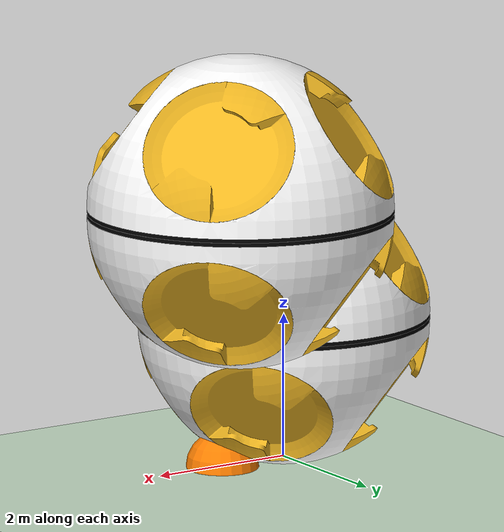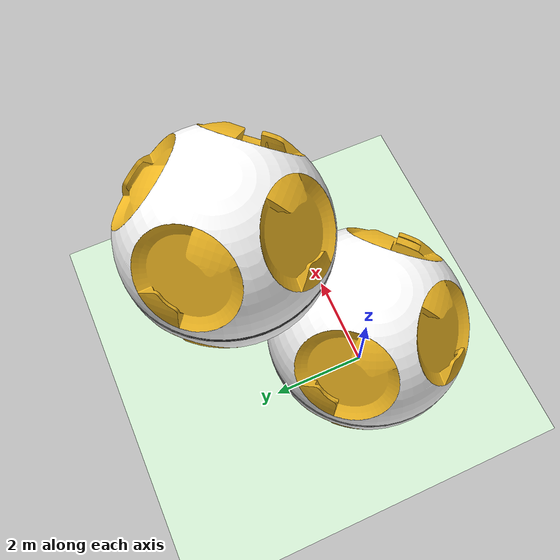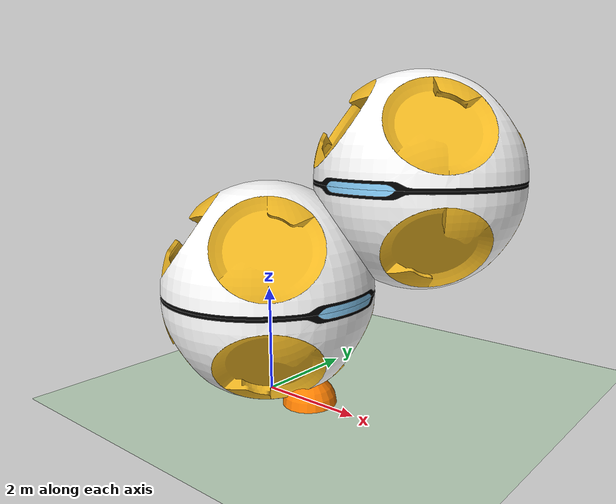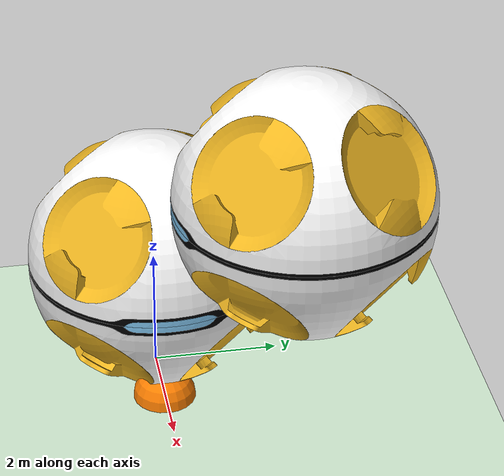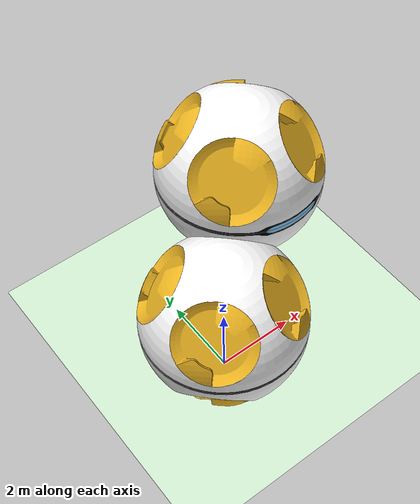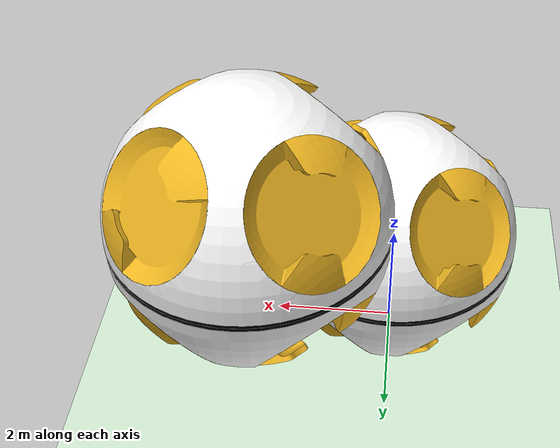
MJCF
<mujoco model="cellrobot(v1.0)">
  <compiler coordinate="local" angle="radian" meshdir="meshes" texturedir="textures" strippath="false" />
   <option gravity="0 0 -9.81" timestep="0.01"/>

  <size njmax="795" nconmax="250" nstack="631875" />

 <default>
        <geom margin="0.001" contype='1' conaffinity='1'  condim='4'/>
        <mesh scale="50 50 50"/>
        <joint limited="true" damping="0.2" armature=".01"/>

         <default class="detacher">
                <geom type="mesh" pos="0 0 0" rgba="0.93 0.71 0.13 1"  /> <!-- rgba="0.8 0.6 .4 1" -->
        </default>
        <default class="cell">
            <geom type="mesh" /> <!-- rgba="0.8 0.6 .4 1" -->

        </default>

   </default>
  <asset>
      <!--Meshes-->
      <mesh name="cell_half_gear" file="cell_gear/shell_gear.STL"  />
      <mesh name="detacher1" file="cell_gear/detacher1.STL"  />
      <mesh name="detacher2" file="cell_gear/detacher2.STL"  />
      <mesh name="detacher3" file="cell_gear/detacher3.STL"  />
      <mesh name="detacher4" file="cell_gear/detacher4.STL"  />
      <mesh name="circle_gear" file="cell_gear/circle_gear.STL"  />
      <mesh name="led_gear" file="cell_gear/led_gear.STL"  />

      <mesh name="cell_half_motor" file="cell_motor/shell_motor.STL"  />
      <mesh name="detacher5" file="cell_motor/detacher5.STL"  />
      <mesh name="detacher6" file="cell_motor/detacher6.STL"  />
      <mesh name="detacher7" file="cell_motor/detacher7.STL"  />
      <mesh name="detacher8" file="cell_motor/detacher8.STL"  />
      <mesh name="circle_motor" file="cell_motor/circle_motor.STL"  />
      <mesh name="led_motor" file="cell_motor/led_motor.STL"  />
      <!--Textures-->
      <texture name="floor_tex" builtin="checker"  type="2d"   rgb1=".2 .3 .4" rgb2=".1 .2 .3" width="100" height="100" />
      <texture name="texplane"  builtin="checker" height="100" rgb1="0 0 0" rgb2="0.8 0.8 0.8" type="2d" width="100"/>

      <texture name="texture:object" file="block.png" type="cube" gridsize="3 4" gridlayout=".U..LFRB.D.."/>  <!-- gridlayout=".U..LFRB.D.." -->

      <!--Materials-->
      <material name='floor_mat'    texture="floor_tex"  shininess="0.8" texrepeat="10 10" specular="0.7"  reflectance="0.5" />
      <material name="MatPlane" reflectance="0.5" shininess="1" specular="1" texrepeat="70 70" texture="texplane"/>

      <material name="material:object" texture="texture:object" specular="1" shininess="0" reflectance="0"/>
  </asset>

   <visual>
        <map fogstart="1.5" fogend="3"/>
        <quality shadowsize="2048"/>
   </visual>

    <!--Contacts-->
    <contact>

    </contact>

  <worldbody>
    <!--Lighting parameters-->
    <light cutoff="100" diffuse="1 1 1" dir="-0 0 -1.3" directional="true" exponent="1" pos="0 0 1.3" specular=".1 .1 .1"/>
    <!--Camera parameters-->
   <camera name="main1" mode="fixed" target="torso" pos="2 2 2" axisangle="2 2 -2 1"/>
    <!--Floor Property-->
    <geom conaffinity="1" condim="3" material="MatPlane" name="floor" pos="0 0 0" rgba="0.8 0.9 0.8 1" size="35 35 35" type="plane"/>

   <body name="torso" pos="0 0 0">

          <geom name="torso_geom" pos="0 0 0" density="0.000001" size="0.02" type="sphere"/>
          <joint name="root" armature="0" damping="0" limited="false" margin="0.01"  pos="0 0 0" type="free"/>
     <body name="cell0-1" pos="0  0  2.050 " euler =" 0   0  0">   <!-- 2.0150 2.0150 1.9147  1.9817 1.9817 1.9814 z*scale  2.6138 1.8479 2.2641 quat="0 -0.4082, -0.4082, 0.81654 "  euler =" 0 3.1416 0"-->
        <inertial pos="0 0 0"   mass="4"  diaginertia="0.0072 0.00443333 0.00443333" />
        <geom  class="cell"  mesh="cell_half_gear"  pos="0 0 0"   rgba="1 1 1 1"  />
        <geom  class="detacher"  mesh="detacher1"   rgba="1 0.42 0.42 1"  />
        <geom  class="detacher"  mesh="detacher2"   />
        <geom  class="detacher"  mesh="detacher3"    />
        <geom  class="detacher"  mesh="detacher4"    />
        <geom  class="cell"  mesh="circle_gear"  pos="0 0 0"  rgba="0 0 0 1"  />
        <geom  class="cell"  mesh="led_gear"  pos="0 0 0"  rgba="0.53 0.81 0.98 1"  />

        <site name="test" pos="1.0075 1.0075 0.9574" size="0.02 "  rgba="1 0.5 0 1" type="sphere"></site>

         <body name="cell1-2" pos="2.0150 2.0150 1.9147"    quat ="0.0 -0.70710678 0.70710678 -0.0" >
                <inertial pos="0 0 0"   mass="4"  diaginertia="0.0072 0.00443333 0.00443333" />
                <geom  class="cell"  mesh="cell_half_motor"  pos="0 0 0"   rgba="1 1 1 1"  />
                <geom  class="detacher"  mesh="detacher5"    />
                <geom  class="detacher"  mesh="detacher6"   />
                <geom  class="detacher"  mesh="detacher7"    />
                <geom  class="detacher"  mesh="detacher8"    />
                <geom  class="cell"  mesh="circle_motor"  pos="0 0 0"  rgba="0 0 0 1"  />
                 <geom  class="cell"  mesh="led_motor"  pos="0 0 0"  rgba="0.53 0.81 0.98 1"  />
                <body name="cell1-1" pos="0 0 0" >
                        <inertial pos="0 0 0"   mass="4"  diaginertia="0.0072 0.00443333 0.00443333" />
                        <geom  class="cell"  mesh="cell_half_gear"  pos="0 0 0"   rgba="1 1 1 1"  />
                        <geom  class="detacher"  mesh="detacher1"   rgba="1 0.42 0.42 1"  />
                        <geom  class="detacher"  mesh="detacher2"   />
                        <geom  class="detacher"  mesh="detacher3"    />
                        <geom  class="detacher"  mesh="detacher4"    />
                        <geom  class="cell"  mesh="circle_gear"  pos="0 0 0"  rgba="0 0 0 1"  />
                        <geom  class="cell"  mesh="led_gear"  pos="0 0 0"  rgba="0.53 0.81 0.98 1"  />

                     <joint name="shoulder_pan_joint2"   pos="0 0 -0.05" axis="0 0 1" limited="true" range="-3.14159 3.14159" />

                 </body>
            </body>

         <joint name="shoulder_pan_joint"   pos="0 0 -0.05" axis="0 0 1" limited="true" range="-3.14159 3.14159" />

        <body name="cell0-2" pos="0 0 0" >
            <inertial pos="0 0 0"   mass="4"  diaginertia="0.0072 0.00443333 0.00443333" />
            <geom  class="cell"  mesh="cell_half_motor"  pos="0 0 0"   rgba="1 1 1 1"  />
            <geom  class="detacher"  mesh="detacher5"    />
            <geom  class="detacher"  mesh="detacher6"   />
            <geom  class="detacher"  mesh="detacher7"    />
            <geom  class="detacher"  mesh="detacher8"    />
            <geom  class="cell"  mesh="circle_motor"  pos="0 0 0"  rgba="0 0 0 1"  />
             <geom  class="cell"  mesh="led_motor"  pos="0 0 0"  rgba="0.53 0.81 0.98 1"  />

        </body>
      </body>
   </body>

  <site name="target1" pos="1 0 0" size="0.5 "  rgba="1 0.5 0 1" type="sphere"></site>

  <site name="target2" pos="0 0 1" size="0.04 "  rgba="1 0 0 1" type="sphere"></site>
  </worldbody>

</mujoco>
